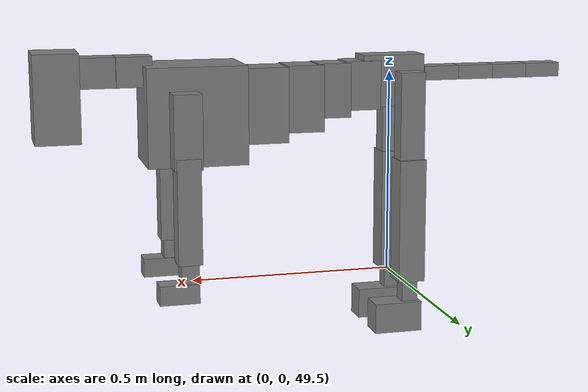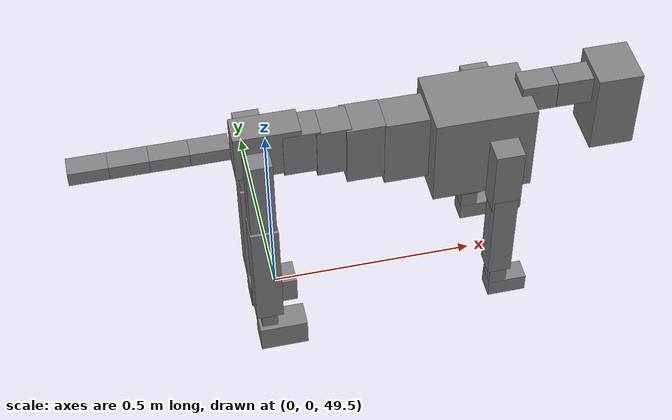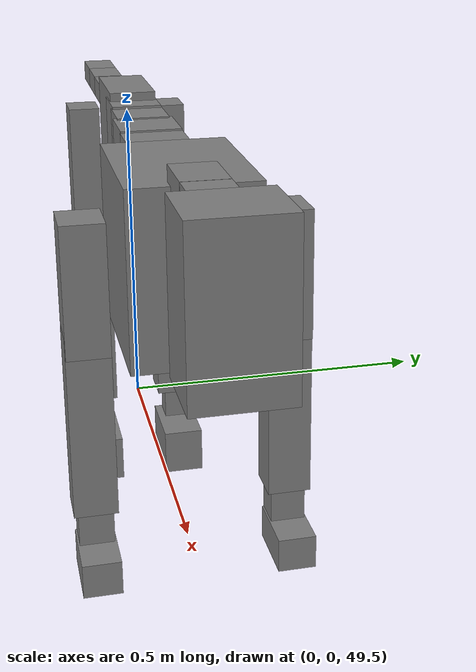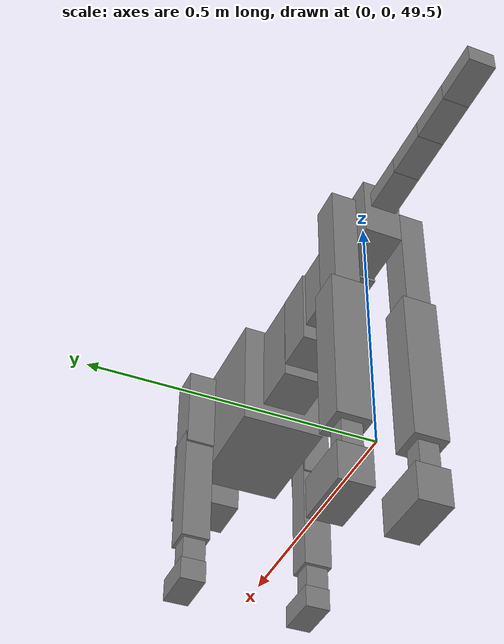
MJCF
<mujoco model="dog">

    <default>
        <joint armature="0.02" stiffness="1" damping="0.2" limited="true"/>
        <geom condim="3" friction="1 0.05 0.05" margin="0.01"/>
        <motor ctrllimited="true" ctrlrange="-1.0 1.0" forcelimited="true" gear="50"/>
    </default>

    <compiler inertiafromgeom="true" angle="radian"/>

    <option timestep="0.016" iterations="50" tolerance="1e-10" solver="Newton" jacobian="dense" cone="pyramidal"/>

    <size nconmax="20000" njmax="60000" nstack="5000000"/>
    <visual>
        <map force="0.1" zfar="30"/>
        <rgba haze="0.15 0.25 0.35 1"/>
        <quality shadowsize="2048"/>
        <global offwidth="800" offheight="800"/>
    </visual>

    <asset>
        <texture type="skybox" builtin="gradient" rgb1="0.3 0.5 0.7" rgb2="0 0 0" width="512" height="512"/>
        <texture name="texplane" type="2d" builtin="checker" rgb1=".2 .3 .4" rgb2=".1 0.15 0.2" width="512" height="512"
                 mark="cross" markrgb=".8 .8 .8"/>
        <texture name="texgeom" type="cube" builtin="flat" mark="cross" width="127" height="1278" rgb1="0.8 0.6 0.4"
                 rgb2="0.8 0.6 0.4" markrgb="1 1 1" random="0.01"/>

        <material name="matplane" reflectance="0.3" texture="texplane" texrepeat="1 1" texuniform="true"/>
        <material name="matgeom" texture="texgeom" texuniform="true" rgba="0.8 0.6 .4 1"/>
    </asset>

    <worldbody>
        <geom name="floor" pos="0 0 0" size="0 0 .25" type="plane" material="matplane" condim="3"/>

        <light directional="false" diffuse=".2 .2 .2" specular="0 0 0" pos="0 0 5" dir="0 0 -1" castshadow="false"/>
        <light mode="targetbodycom" target="torso" directional="false" diffuse=".8 .8 .8" specular="0.3 0.3 0.3"
               pos="0 0 4.0" dir="0 0 -1"/>

        <body name="root" pos="0 0 50">
            <freejoint name="root_1"/>
            <geom type="box" pos="0 0 -0.02" size="0.0774  0.0358  0.063" density="2030"/>

            <body name="spine1" pos="0.054 0 0">
                <joint name="spine1_y" axis="0 1 0" range="0 0.7" limited="true"/>
                <geom type="box" pos="0.02375 0 -0.03" size="0.04375  0.0375  0.05985" density="2030"/>

                <body name="spine2" pos="0.0612 0 0">
                    <joint name="spine2_y" axis="0 1 0" range="-0.15 0.15" limited="true"/>
                    <geom type="box" pos="0.03555  0  -0.04" size="0.04055  0.039  0.06615" density="2030"/>

                    <body name="spine3" pos="0.0730 0 0">
                        <joint name="spine3_y" axis="0 1 0" range="-0.15 0.15" limited="true"/>
                        <geom type="box" pos="0.03555  0  -0.057" size="0.04555  0.0445  0.081" density="2030"/>

                        <body name="spine4" pos="0.0780 0 0">
                            <joint name="spine4_y" axis="0 1 0" range="-0.15 0.15" limited="true"/>
                            <geom type="box" pos="0.05265  0  -0.07" size="0.05265  0.045  0.09135" density="2030"/>

                            <body name="torso" pos="0.1082 0 0">
                                <joint name="torso_y" axis="0 1 0" range="-0.15 0.15" limited="true"/>
                                <geom type="box" pos="0.11925  0  -0.085" size="0.11925  0.085  0.11745"
                                      density="2030"/>

                                <body name="neck1" pos="0.2160  0   0.0180">
                                    <joint name="neck1_y" axis="0 1 0" range="-1.2  -1" limited="true"/>
                                    <geom type="box" pos="0.0423  0  0" size="0.0423  0.03  0.036" density="2325"/>

                                    <body name="neck2" pos="0.0853  0  0">
                                        <joint name="neck2_y" axis="0 1 0" range="0.1  0" limited="true"/>
                                        <geom type="box" pos="0.0423  0  0" size="0.0423  0.03  0.036" density="2325"/>

                                        <body name="head" pos="0.0853  0  0">
                                            <joint name="head_y" axis="0 1 0" range="-0.3  -0.2" limited="true"/>
                                            <geom type="box" pos="0.0531  0  -0.055" size="0.0531  0.06  0.1044"
                                                  density="4030"/>

                                        </body>
                                    </body>
                                </body>

                                <body name="front_shoulder" pos="0.156  0   -0.0480">
                                    <joint name="front_shoulder_y" axis="0 1 0" range="-1 1.5" limited="true"/>
                                    <geom type="box" pos="0 0.13 -0.0608" size="0.0335  0.0286  0.0875" density="1158"/>
                                    <geom type="box" pos="0 -0.13 -0.0608" size="0.0335  0.0286  0.0875"
                                          density="1158"/>

                                    <body name="front_elbow" pos="0  0  -0.1216">
                                        <joint name="front_elbow_y" axis="0 1 0" range="-2 0" limited="true"/>
                                        <geom type="box" pos="0 0.13 -0.1247" size="0.0285  0.0291  0.1247"
                                              density="1081"/>
                                        <geom type="box" pos="0 -0.13 -0.1247" size="0.0285  0.0291  0.1247"
                                              density="1081"/>

                                        <body name="front_wrist" pos="0  0  -0.2495">
                                            <joint name="front_wrist_y" axis="0 1 0" range="-0.2 0" limited="true"/>
                                            <geom type="box" pos="0 0.13 -0.0305" size="0.0211  0.0234  0.0437"
                                                  density="1664"/>
                                            <geom type="box" pos="0 -0.13 -0.0305" size="0.0211  0.0234  0.0437"
                                                  density="1664"/>

                                            <body name="front_finger_end" pos="0  0  -0.0610">
                                                <joint name="front_finger_y" axis="0 1 0" range="-0.4 1"
                                                       limited="true"/>
                                                <geom type="box" pos="0.0257  0.13  -0.0083"
                                                      size="0.0471  0.0257  0.0233" density="1515"/>
                                                <geom type="box" pos="0.0257  -0.13  -0.0083"
                                                      size="0.0471  0.0257  0.0233" density="1515"/>

                                            </body>

                                        </body>
                                    </body>
                                </body>

                            </body>
                        </body>
                    </body>
                </body>
            </body>

            <body name="back_hip" pos="-0.03 0 -0.018">
                <joint name="back_hip_y" axis="0 1 0" range="-1.5 0.3" limited="true"/>
                <geom type="box" pos="0 0.07 -0.1030" size="0.0309  0.0242  0.1258" density="1154"/>
                <geom type="box" pos="0 -0.07 -0.1030" size="0.0309  0.0242  0.1258" density="1154"/>

                <body name="back_knee" pos="0  0  -0.2059">
                    <joint name="back_knee_y" axis="0 1 0" range="0 2.8" limited="true"/>
                    <geom type="box" pos="0 0.07 -0.1367" size="0.0334  0.0330  0.1523" density="1227"/>
                    <geom type="box" pos="0 -0.07 -0.1367" size="0.0334  0.0330  0.1523" density="1227"/>

                    <body name="back_ankle" pos="0  0  -0.2734">
                        <joint name="back_ankle_y" axis="0 1 0" range="-2.2 0" limited="true"/>
                        <geom type="box" pos="0 0.07 -0.0414" size="0.0196  0.0196  0.0527" density="1284"/>
                        <geom type="box" pos="0 -0.07 -0.0414" size="0.0196  0.0196  0.0527" density="1284"/>

                        <body name="back_toe_end" pos="0  0  -0.0828">
                            <joint name="back_toe_y" axis="0 1 0" range="-0.4 1" limited="true"/>
                            <geom type="box" pos="0.0324  0.07  -0.0222" size="0.0594  0.0324  0.0372" density="1515"/>
                            <geom type="box" pos="0.0324  -0.07  -0.0222" size="0.0594  0.0324  0.0372" density="1515"/>

                        </body>
                    </body>
                </body>
            </body>

            <body name="tail1" pos="-0.074 0 -0.006">
                <joint name="tail1_y" axis="0 1 0" range="-0.2 0.2" limited="true"/>
                <geom type="box" pos="-0.0536  0  0" size="0.045  0.025  0.0175" density="1587"/>

                <body name="tail2" pos="-0.09 0 0">
                    <joint name="tail2_y" axis="0 1 0" range="-0.2 0.2" limited="true"/>
                    <geom type="box" pos="-0.0536  0  0" size="0.045  0.025  0.0175" density="1587"/>

                    <body name="tail3" pos="-0.09 0 0">
                        <joint name="tail3_y" axis="0 1 0" range="-0.2 0.2" limited="true"/>
                        <geom type="box" pos="-0.0536  0  0" size="0.045  0.025  0.0175" density="1587"/>

                        <body name="tail4" pos="-0.09 0 0">
                            <joint name="tail4_y" axis="0 1 0" range="-0.2 0.2" limited="true"/>
                            <geom type="box" pos="-0.0536  0  0" size="0.045  0.025  0.0175" density="1587"/>

                        </body>
                    </body>
                </body>
            </body>
        </body>
    </worldbody>

    <actuator>
        <motor joint="spine1_y" forcerange="-150 150     "/>
        <motor joint="spine2_y" forcerange="-150 150     "/>
        <motor joint="spine3_y" forcerange="-150 150     "/>
        <motor joint="spine4_y" forcerange="-150 150     "/>
        <motor joint="torso_y" forcerange="-150 150     "/>
        <motor joint="neck1_y" forcerange="-100 100       "/>
        <motor joint="neck2_y" forcerange="-100 100       "/>
        <motor joint="head_y" forcerange="-150 150       "/>
        <motor joint="front_shoulder_y" forcerange="-111.57 179.14"/>
        <motor joint="front_elbow_y" forcerange="-130.00 181.63"/>
        <motor joint="front_wrist_y" forcerange="-69.76 117.46"/>
        <motor joint="front_finger_y" forcerange="-49.06 47.97"/>
        <motor joint="back_hip_y" forcerange="-253.25 269.56"/>
        <motor joint="back_knee_y" forcerange="-373.35 306.03"/>
        <motor joint="back_angle_y" forcerange="-142.23 71.69"/>
        <motor joint="back_toe_y" forcerange="-85.32 93.95"/>
        <motor joint="tail1_y" forcerange="-50 50     "/>
        <motor joint="tail2_y" forcerange="-50 50     "/>
        <motor joint="tail3_y" forcerange="-50 50     "/>
        <motor joint="tail4_y" forcerange="-50 50     "/>
    </actuator>
</mujoco>
